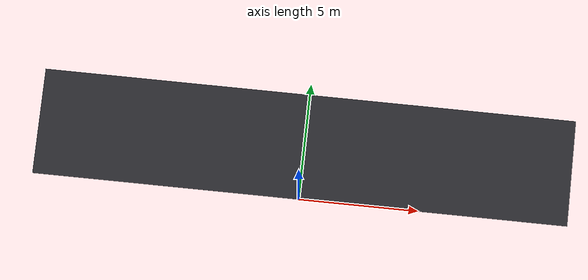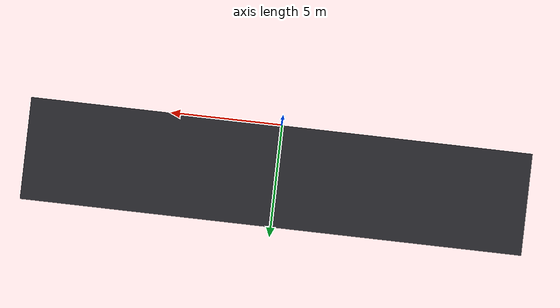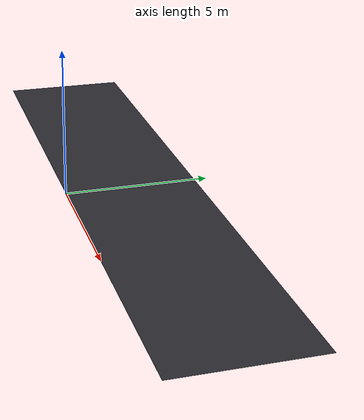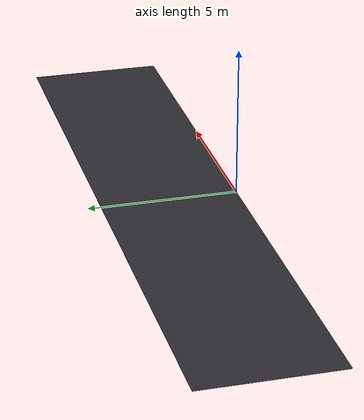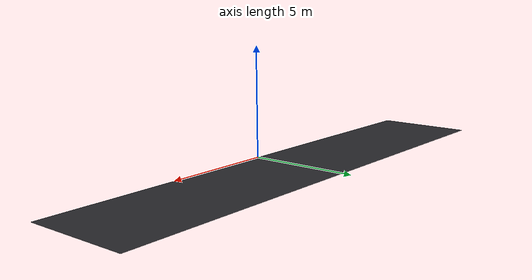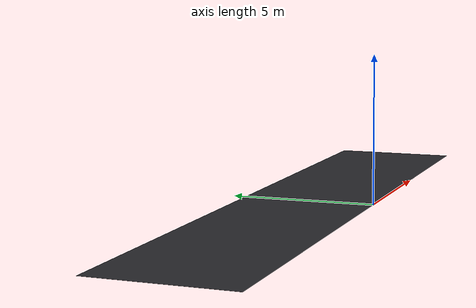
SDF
<?xml version="1.0"?>
<sdf version="1.8">
  <model name="reefscape_carpet">
    <static>true</static>

    <link name="link">
      <visual name="visual">
        <geometry>
          <mesh>
            <uri>meshes/carpet.stl</uri>
            <scale>1 1 1</scale>
          </mesh>
        </geometry>
        <material>
          <ambient>0.08 0.08 0.09 1</ambient>
          <diffuse>0.16 0.16 0.18 1</diffuse>
        </material>
      </visual>

      <collision name="collision">
        <geometry>
          <mesh>
            <uri>meshes/carpet.stl</uri>
            <scale>1 1 1</scale>
          </mesh>
        </geometry>
      </collision>
    </link>
  </model>
</sdf>
